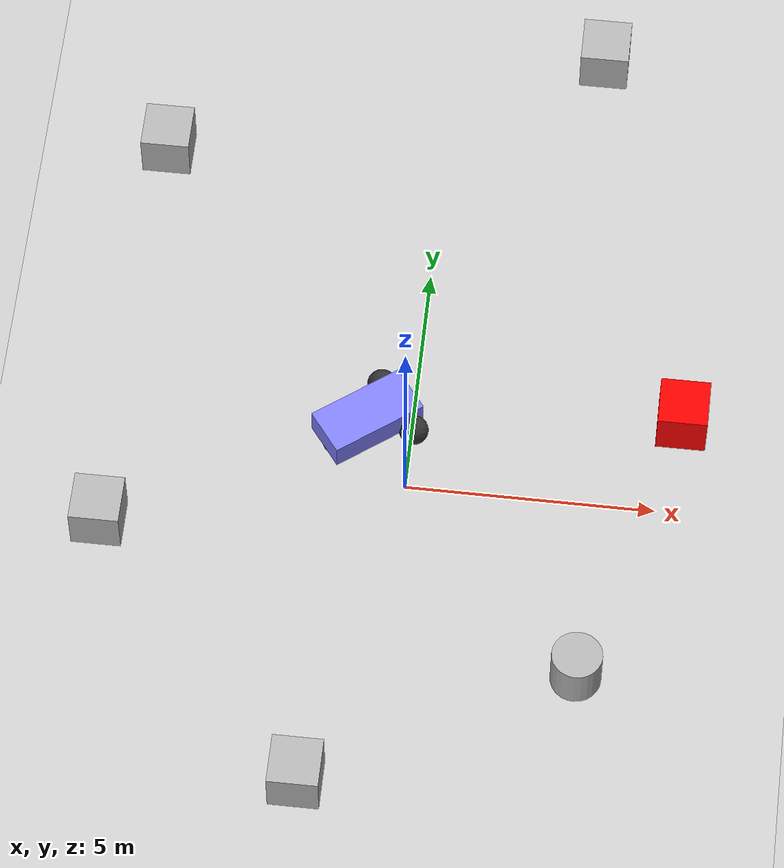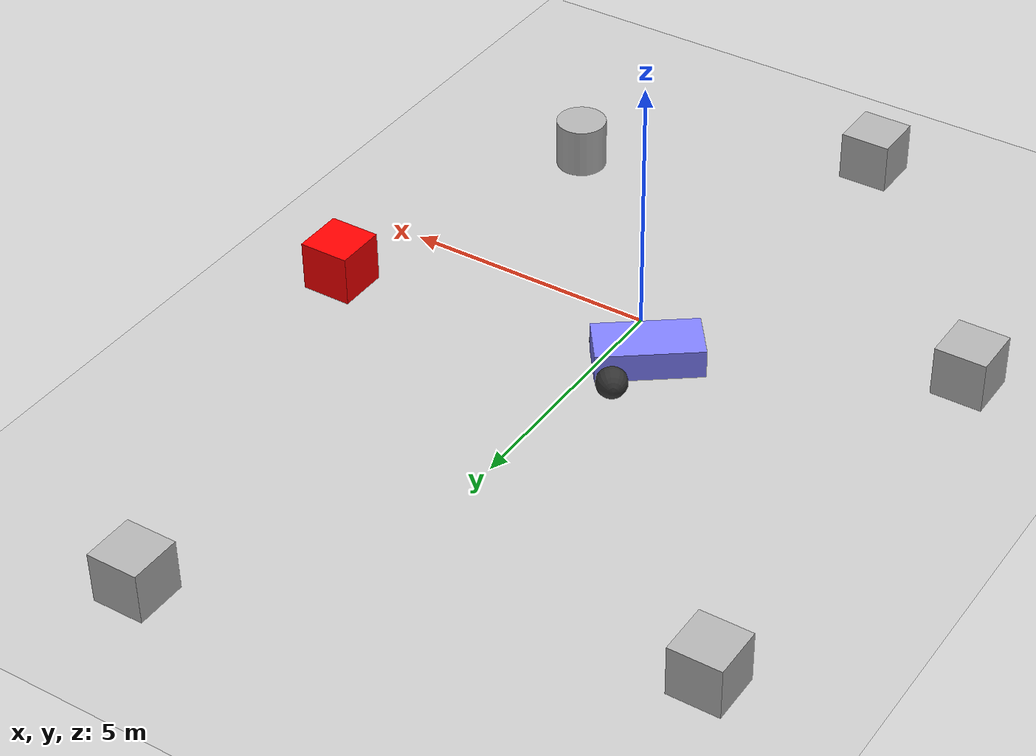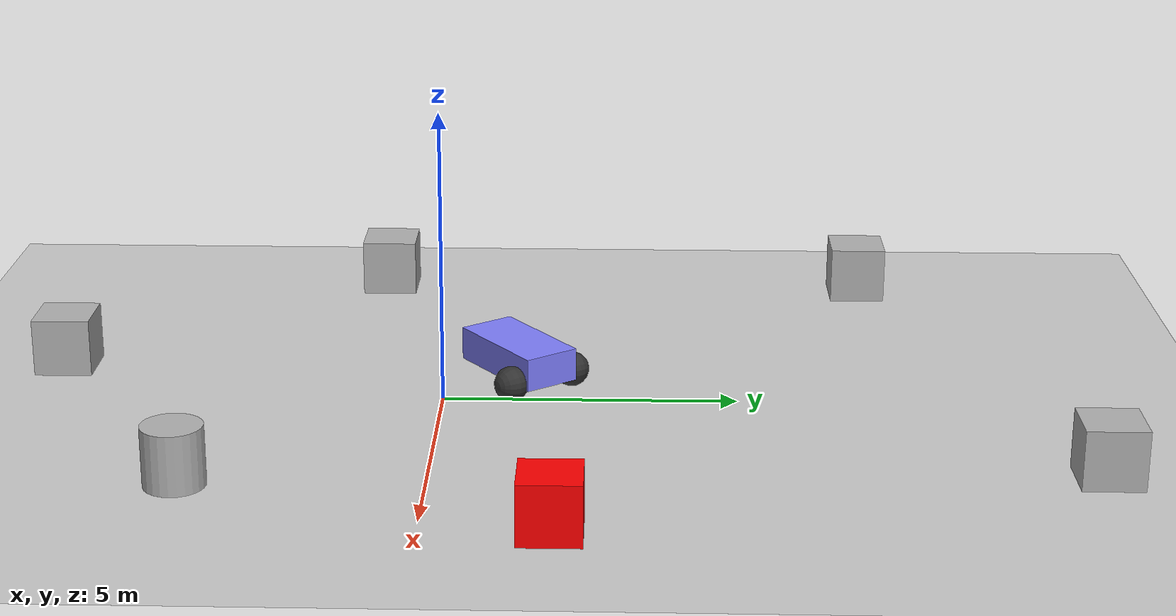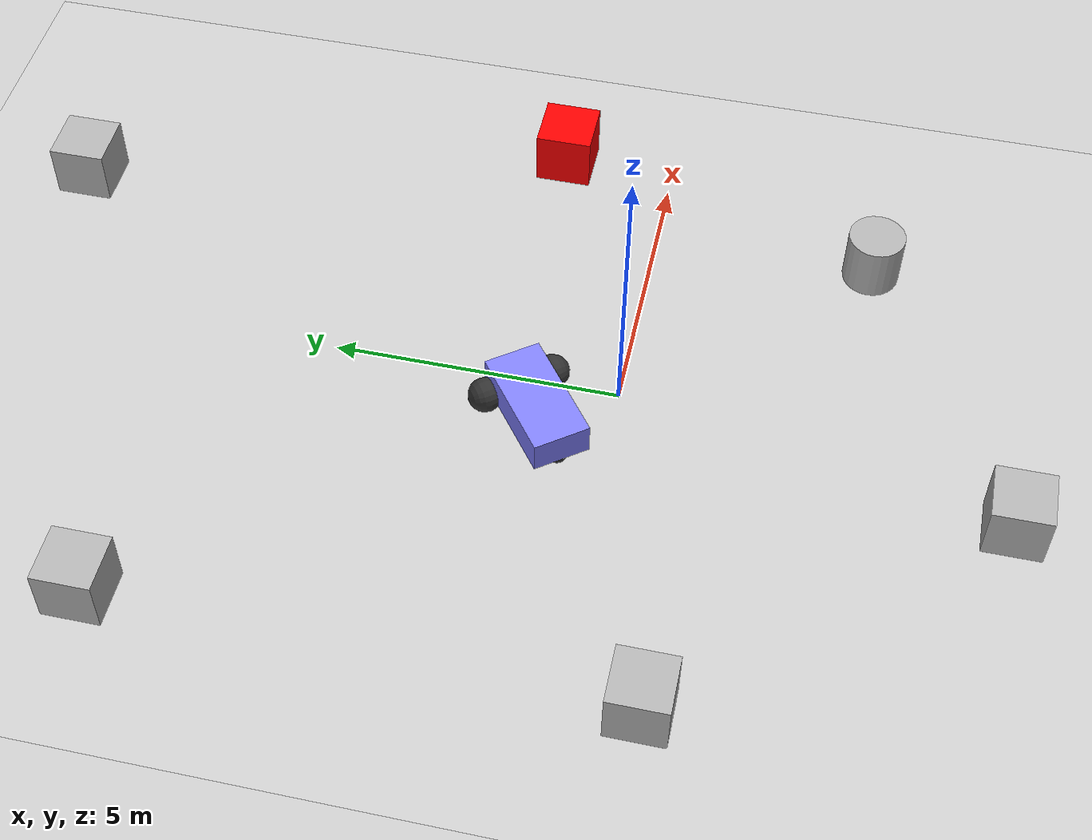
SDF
<?xml version="1.0" ?>
<sdf version='1.10'>
  <world name='gpu_lidar_sensor'>
    <physics name='1ms' type='ignored'>
      <max_step_size>0.001</max_step_size>
      <real_time_factor>1</real_time_factor>
      <real_time_update_rate>1000</real_time_update_rate>
    </physics>
    <plugin name='gz::sim::systems::Physics' filename='gz-sim-physics-system'/>
    <plugin name='gz::sim::systems::Sensors' filename='gz-sim-sensors-system'>
      <render_engine>ogre2</render_engine>
    </plugin>
    <plugin name='gz::sim::systems::SceneBroadcaster' filename='gz-sim-scene-broadcaster-system'/>
    <plugin name='gz::sim::systems::UserCommands' filename='gz-sim-user-commands-system'/>
    <plugin name='gz::sim::systems::TriggeredPublisher' filename='gz-sim-triggered-publisher-system'>
      <input type='gz.msgs.Int32' topic='/keyboard/keypress'>
        <match field='data'>88</match>
      </input>
      <output type='gz.msgs.Twist' topic='/cmd_vel'>linear: {x: 0.0}, angular: {z: 0.0}</output>
    </plugin>
    <plugin name='gz::sim::systems::TriggeredPublisher' filename='gz-sim-triggered-publisher-system'>
      <input type='gz.msgs.Int32' topic='/keyboard/keypress'>
        <match field='data'>16777234</match>
      </input>
      <output type='gz.msgs.Twist' topic='/cmd_vel'>linear: {x: 0.0}, angular: {z: 0.5}</output>
    </plugin>
    <plugin name='gz::sim::systems::TriggeredPublisher' filename='gz-sim-triggered-publisher-system'>
      <input type='gz.msgs.Int32' topic='/keyboard/keypress'>
        <match field='data'>16777235</match>
      </input>
      <output type='gz.msgs.Twist' topic='/cmd_vel'>linear: {x: 1}, angular: {z: 0.0}</output>
    </plugin>
    <plugin name='gz::sim::systems::TriggeredPublisher' filename='gz-sim-triggered-publisher-system'>
      <input type='gz.msgs.Int32' topic='/keyboard/keypress'>
        <match field='data'>16777236</match>
      </input>
      <output type='gz.msgs.Twist' topic='/cmd_vel'>linear: {x: 0.0}, angular: {z: -0.5}</output>
    </plugin>
    <plugin name='gz::sim::systems::TriggeredPublisher' filename='gz-sim-triggered-publisher-system'>
      <input type='gz.msgs.Int32' topic='/keyboard/keypress'>
        <match field='data'>16777237</match>
      </input>
      <output type='gz.msgs.Twist' topic='/cmd_vel'>linear: {x: -1}, angular: {z: 0.0}</output>
    </plugin>
    <gravity>0 0 -9.8000000000000007</gravity>
    <magnetic_field>5.5644999999999998e-06 2.2875799999999999e-05 -4.2388400000000002e-05</magnetic_field>
    <atmosphere type='adiabatic'/>
    <scene>
      <ambient>0.400000006 0.400000006 0.400000006 1</ambient>
      <background>0.699999988 0.699999988 0.699999988 1</background>
      <shadows>true</shadows>
    </scene>
    <model name='ground_plane'>
      <static>true</static>
      <link name='link'>
        <collision name='collision'>
          <geometry>
            <plane>
              <normal>0 0 1</normal>
              <size>1 1</size>
            </plane>
          </geometry>
          <surface>
            <friction>
              <ode/>
            </friction>
            <bounce/>
            <contact/>
          </surface>
        </collision>
        <visual name='visual'>
          <geometry>
            <plane>
              <normal>0 0 1</normal>
              <size>1 1</size>
            </plane>
          </geometry>
          <material>
            <ambient>0.800000012 0.800000012 0.800000012 1</ambient>
            <diffuse>0.800000012 0.800000012 0.800000012 1</diffuse>
            <specular>0.800000012 0.800000012 0.800000012 1</specular>
          </material>
        </visual>
        <pose>0 0 0 0 0 0</pose>
        <inertial>
          <pose>0 0 0 0 0 0</pose>
          <mass>1</mass>
          <inertia>
            <ixx>1</ixx>
            <ixy>0</ixy>
            <ixz>0</ixz>
            <iyy>1</iyy>
            <iyz>0</iyz>
            <izz>1</izz>
          </inertia>
        </inertial>
        <enable_wind>false</enable_wind>
      </link>
      <pose>0 0 0 0 0 0</pose>
      <self_collide>false</self_collide>
    </model>
    <model name='vehicle_blue'>
      <pose>-0.77184983539733709 1.3399398861786205 0.32499999238485333 -4.4728765509874015e-15 2.4935115197319461e-10 0.6437200589346791</pose>
      <link name='chassis'>
        <pose>-0.15142700000000001 0 0.17499999999999999 0 0 0</pose>
        <inertial>
          <mass>1.14395</mass>
          <inertia>
            <ixx>0.126164</ixx>
            <ixy>0</ixy>
            <ixz>0</ixz>
            <iyy>0.41651899999999997</iyy>
            <iyz>0</iyz>
            <izz>0.481014</izz>
          </inertia>
          <pose>0 0 0 0 0 0</pose>
        </inertial>
        <visual name='visual'>
          <geometry>
            <box>
              <size>2.0114200000000002 1 0.56872599999999995</size>
            </box>
          </geometry>
          <material>
            <ambient>0.5 0.5 1 1</ambient>
            <diffuse>0.5 0.5 1 1</diffuse>
            <specular>0 0 1 1</specular>
          </material>
        </visual>
        <collision name='collision'>
          <geometry>
            <box>
              <size>2.0114200000000002 1 0.56872599999999995</size>
            </box>
          </geometry>
          <surface>
            <friction>
              <ode/>
            </friction>
            <bounce/>
            <contact/>
          </surface>
        </collision>
        <enable_wind>false</enable_wind>
      </link>
      <link name='lidar_link'>
        <pose>0.050000000000000072 8.8817841970012523e-16 0.29999999999999988 5.169878828456423e-26 -1.2278462217584005e-25 -3.1739080932344823e-51</pose>
        <sensor name='gpu_lidar' type='gpu_lidar'>
          <pose>0 0 0 0 0 0</pose>
          <topic>lidar</topic>
          <update_rate>10</update_rate>
          <enable_metrics>false</enable_metrics>
          <lidar>
            <scan>
              <horizontal>
                <samples>640</samples>
                <resolution>1</resolution>
                <min_angle>-3.1400000000000001</min_angle>
                <max_angle>3.1400000000000001</max_angle>
              </horizontal>
              <vertical>
                <samples>16</samples>
                <min_angle>-0.261799</min_angle>
                <max_angle>0.261799</max_angle>
                <resolution>1</resolution>
              </vertical>
            </scan>
            <range>
              <min>0.080000000000000002</min>
              <max>10</max>
              <resolution>0.01</resolution>
            </range>
            <noise>
              <type>none</type>
              <mean>0</mean>
              <stddev>0</stddev>
            </noise>
            <visibility_mask>4294967295</visibility_mask>
          </lidar>
        </sensor>
        <inertial>
          <pose>0 0 0 0 0 0</pose>
          <mass>1</mass>
          <inertia>
            <ixx>1</ixx>
            <ixy>0</ixy>
            <ixz>0</ixz>
            <iyy>1</iyy>
            <iyz>0</iyz>
            <izz>1</izz>
          </inertia>
        </inertial>
        <enable_wind>false</enable_wind>
      </link>
      <joint name='lidar_joint' type='fixed'>
        <parent>chassis</parent>
        <child>lidar_link</child>
        <pose>0 0 0 0 0 0</pose>
      </joint>
      <link name='base_footprint'>
        <pose>-4.163336342344337e-16 2.2204460492503131e-16 -5.5511151231257827e-17 3.8774091213423172e-26 8.4010530962416873e-26 1.6287159952124317e-51</pose>
        <inertial>
          <pose>0 0 0 0 0 0</pose>
          <mass>1</mass>
          <inertia>
            <ixx>1</ixx>
            <ixy>0</ixy>
            <ixz>0</ixz>
            <iyy>1</iyy>
            <iyz>0</iyz>
            <izz>1</izz>
          </inertia>
        </inertial>
        <enable_wind>false</enable_wind>
      </link>
      <joint name='base_footprint_joint' type='fixed'>
        <parent>base_footprint</parent>
        <child>chassis</child>
        <pose>0 0 0 0 0 0</pose>
      </joint>
      <link name='left_wheel'>
        <pose>0.55428400004815626 0.6250290000105021 -0.025000000000020228 -1.5702712195450679 1.3863094489912935 0.00051619644829633215</pose>
        <inertial>
          <mass>2</mass>
          <inertia>
            <ixx>0.14583299999999999</ixx>
            <ixy>0</ixy>
            <ixz>0</ixz>
            <iyy>0.14583299999999999</iyy>
            <iyz>0</iyz>
            <izz>0.125</izz>
          </inertia>
          <pose>0 0 0 0 0 0</pose>
        </inertial>
        <visual name='visual'>
          <geometry>
            <sphere>
              <radius>0.29999999999999999</radius>
            </sphere>
          </geometry>
          <material>
            <ambient>0.200000003 0.200000003 0.200000003 1</ambient>
            <diffuse>0.200000003 0.200000003 0.200000003 1</diffuse>
            <specular>0.200000003 0.200000003 0.200000003 1</specular>
          </material>
        </visual>
        <collision name='collision'>
          <geometry>
            <sphere>
              <radius>0.29999999999999999</radius>
            </sphere>
          </geometry>
          <surface>
            <friction>
              <ode>
                <mu>1</mu>
                <mu2>1</mu2>
                <slip1>0.035000000000000003</slip1>
                <slip2>0</slip2>
                <fdir1>0 0 1</fdir1>
              </ode>
              <bullet>
                <friction>1</friction>
                <friction2>1</friction2>
                <rolling_friction>0.10000000000000001</rolling_friction>
              </bullet>
            </friction>
            <bounce/>
            <contact/>
          </surface>
        </collision>
        <enable_wind>false</enable_wind>
      </link>
      <link name='right_wheel'>
        <pose>0.55428300004815811 -0.62502899998949779 -0.025000000000020062 1.5706358434850947 -0.92700848071801945 -3.1414642945567595</pose>
        <inertial>
          <mass>2</mass>
          <inertia>
            <ixx>0.14583299999999999</ixx>
            <ixy>0</ixy>
            <ixz>0</ixz>
            <iyy>0.14583299999999999</iyy>
            <iyz>0</iyz>
            <izz>0.125</izz>
          </inertia>
          <pose>0 0 0 0 0 0</pose>
        </inertial>
        <visual name='visual'>
          <geometry>
            <sphere>
              <radius>0.29999999999999999</radius>
            </sphere>
          </geometry>
          <material>
            <ambient>0.200000003 0.200000003 0.200000003 1</ambient>
            <diffuse>0.200000003 0.200000003 0.200000003 1</diffuse>
            <specular>0.200000003 0.200000003 0.200000003 1</specular>
          </material>
        </visual>
        <collision name='collision'>
          <geometry>
            <sphere>
              <radius>0.29999999999999999</radius>
            </sphere>
          </geometry>
          <surface>
            <friction>
              <ode>
                <mu>1</mu>
                <mu2>1</mu2>
                <slip1>0.035000000000000003</slip1>
                <slip2>0</slip2>
                <fdir1>0 0 1</fdir1>
              </ode>
              <bullet>
                <friction>1</friction>
                <friction2>1</friction2>
                <rolling_friction>0.10000000000000001</rolling_friction>
              </bullet>
            </friction>
            <bounce/>
            <contact/>
          </surface>
        </collision>
        <enable_wind>false</enable_wind>
      </link>
      <link name='caster'>
        <pose>-0.95713699995184798 1.0500711411509656e-11 -0.1249999999999423 0.70899221633459164 0.28263916385468862 1.2093188155541783</pose>
        <inertial>
          <mass>1</mass>
          <inertia>
            <ixx>0.10000000000000001</ixx>
            <ixy>0</ixy>
            <ixz>0</ixz>
            <iyy>0.10000000000000001</iyy>
            <iyz>0</iyz>
            <izz>0.10000000000000001</izz>
          </inertia>
          <pose>0 0 0 0 0 0</pose>
        </inertial>
        <visual name='visual'>
          <geometry>
            <sphere>
              <radius>0.20000000000000001</radius>
            </sphere>
          </geometry>
          <material>
            <ambient>0.200000003 0.200000003 0.200000003 1</ambient>
            <diffuse>0.200000003 0.200000003 0.200000003 1</diffuse>
            <specular>0.200000003 0.200000003 0.200000003 1</specular>
          </material>
        </visual>
        <collision name='collision'>
          <geometry>
            <sphere>
              <radius>0.20000000000000001</radius>
            </sphere>
          </geometry>
          <surface>
            <friction>
              <ode/>
            </friction>
            <bounce/>
            <contact/>
          </surface>
        </collision>
        <enable_wind>false</enable_wind>
      </link>
      <joint name='left_wheel_joint' type='revolute'>
        <parent>chassis</parent>
        <child>left_wheel</child>
        <axis>
          <xyz>0 0 1</xyz>
          <limit>
            <lower>-1.7976900000000001e+308</lower>
            <upper>1.7976900000000001e+308</upper>
            <effort>inf</effort>
            <velocity>inf</velocity>
            <stiffness>100000000</stiffness>
            <dissipation>1</dissipation>
          </limit>
          <dynamics>
            <spring_reference>0</spring_reference>
            <spring_stiffness>0</spring_stiffness>
            <damping>0</damping>
            <friction>0</friction>
          </dynamics>
        </axis>
        <pose>1.1102230246251565e-16 2.7755575615628914e-17 1.1102230246251565e-16 0 0 -8.3266726846886741e-17</pose>
      </joint>
      <joint name='right_wheel_joint' type='revolute'>
        <parent>chassis</parent>
        <child>right_wheel</child>
        <axis>
          <xyz>0 0 1</xyz>
          <limit>
            <lower>-1.7976900000000001e+308</lower>
            <upper>1.7976900000000001e+308</upper>
            <effort>inf</effort>
            <velocity>inf</velocity>
            <stiffness>100000000</stiffness>
            <dissipation>1</dissipation>
          </limit>
          <dynamics>
            <spring_reference>0</spring_reference>
            <spring_stiffness>0</spring_stiffness>
            <damping>0</damping>
            <friction>0</friction>
          </dynamics>
        </axis>
        <pose>-1.1102230246251565e-16 5.5511151231257827e-17 -3.3306690738754696e-16 0 0 -1.1102230246251568e-16</pose>
      </joint>
      <joint name='caster_wheel' type='ball'>
        <parent>chassis</parent>
        <child>caster</child>
        <pose>-1.1102230246251565e-16 0 -1.1102230246251565e-16 0 0 0</pose>
      </joint>
      <plugin name='gz::sim::systems::DiffDrive' filename='gz-sim-diff-drive-system'>
        <left_joint>left_wheel_joint</left_joint>
        <right_joint>right_wheel_joint</right_joint>
        <wheel_separation>1.25</wheel_separation>
        <wheel_radius>0.3</wheel_radius>
        <max_linear_acceleration>1</max_linear_acceleration>
        <min_linear_acceleration>-1</min_linear_acceleration>
        <max_angular_acceleration>2</max_angular_acceleration>
        <min_angular_acceleration>-2</min_angular_acceleration>
        <max_linear_velocity>1</max_linear_velocity>
        <min_linear_velocity>-1</min_linear_velocity>
        <max_angular_velocity>1</max_angular_velocity>
        <min_angular_velocity>-1</min_angular_velocity>
        <topic>cmd_vel</topic>
        <tf_topic>tf_foo</tf_topic>
        <odom_topic>odom</odom_topic>
        <frame_id>odom</frame_id>
        <child_frame_id>vehicle_blue</child_frame_id>
        <odom_publisher_frequency>30</odom_publisher_frequency>
      </plugin>
      <plugin name='ignition::gazebo::systems::JointStatePublisher' filename='ignition-gazebo-joint-state-publisher-system'/>
      <plugin name='ignition::gazebo::systems::PosePublisher' filename='ignition-gazebo-pose-publisher-system'>
        <publish_link_pose>true</publish_link_pose>
        <use_pose_vector_msg>true</use_pose_vector_msg>
        <publish_sensor_pose>true</publish_sensor_pose>
      </plugin>
      <static>false</static>
      <self_collide>false</self_collide>
    </model>
    <model name='box'>
      <pose>5.3964481353759766 2 0.4999991699156669 6.7620267452500662e-18 -6.7812738346563619e-18 -7.0404034346060617e-19</pose>
      <link name='box_link'>
        <inertial>
          <inertia>
            <ixx>1</ixx>
            <ixy>0</ixy>
            <ixz>0</ixz>
            <iyy>1</iyy>
            <iyz>0</iyz>
            <izz>1</izz>
          </inertia>
          <mass>1</mass>
          <pose>0 0 0 0 0 0</pose>
        </inertial>
        <collision name='box_collision'>
          <geometry>
            <box>
              <size>1 1 1</size>
            </box>
          </geometry>
          <surface>
            <friction>
              <ode/>
            </friction>
            <bounce/>
            <contact/>
          </surface>
        </collision>
        <visual name='box_visual'>
          <geometry>
            <box>
              <size>1 1 1</size>
            </box>
          </geometry>
          <material>
            <ambient>1 0 0 1</ambient>
            <diffuse>1 0 0 1</diffuse>
            <specular>1 0 0 1</specular>
          </material>
        </visual>
        <pose>0 0 0 0 0 0</pose>
        <enable_wind>false</enable_wind>
      </link>
      <static>false</static>
      <self_collide>false</self_collide>
    </model>
    <model name='cylinder'>
      <pose>3.7591266286598506 -3.8982623502909348 0.49999916990436061 7.523108720982276e-17 -6.9614014468967318e-18 -2.8532095453170832e-17</pose>
      <link name='cylinder_link'>
        <inertial>
          <inertia>
            <ixx>0.14580000000000001</ixx>
            <ixy>0</ixy>
            <ixz>0</ixz>
            <iyy>0.14580000000000001</iyy>
            <iyz>0</iyz>
            <izz>0.125</izz>
          </inertia>
          <mass>1</mass>
          <pose>0 0 0 0 0 0</pose>
        </inertial>
        <collision name='cylinder_collision'>
          <geometry>
            <cylinder>
              <radius>0.5</radius>
              <length>1</length>
            </cylinder>
          </geometry>
          <surface>
            <friction>
              <ode/>
            </friction>
            <bounce/>
            <contact/>
          </surface>
        </collision>
        <visual name='cylinder_visual'>
          <geometry>
            <cylinder>
              <radius>0.5</radius>
              <length>1</length>
            </cylinder>
          </geometry>
          <material>
            <ambient>0.300000012 0.300000012 0.300000012 1</ambient>
            <diffuse>0.699999988 0.699999988 0.699999988 1</diffuse>
            <specular>1 1 1 1</specular>
          </material>
        </visual>
        <pose>0 0 0 0 0 0</pose>
        <enable_wind>false</enable_wind>
      </link>
      <static>false</static>
      <self_collide>false</self_collide>
    </model>
    <model name='box_0'>
      <pose>-5.9654865264892578 -1.444100022315979 0.4999991635466341 -1.4533271087306346e-18 -6.7670596386774058e-18 -1.2272757283809392e-20</pose>
      <link name='box_link'>
        <inertial>
          <inertia>
            <ixx>0.16666</ixx>
            <ixy>0</ixy>
            <ixz>0</ixz>
            <iyy>0.16666</iyy>
            <iyz>0</iyz>
            <izz>0.16666</izz>
          </inertia>
          <mass>1</mass>
          <pose>0 0 0 0 0 0</pose>
        </inertial>
        <collision name='box_collision'>
          <geometry>
            <box>
              <size>1 1 1</size>
            </box>
          </geometry>
          <surface>
            <friction>
              <ode/>
            </friction>
            <bounce/>
            <contact/>
          </surface>
        </collision>
        <visual name='box_visual'>
          <geometry>
            <box>
              <size>1 1 1</size>
            </box>
          </geometry>
          <material>
            <ambient>0.300000012 0.300000012 0.300000012 1</ambient>
            <diffuse>0.699999988 0.699999988 0.699999988 1</diffuse>
            <specular>1 1 1 1</specular>
          </material>
        </visual>
        <pose>0 0 0 0 0 0</pose>
        <enable_wind>false</enable_wind>
      </link>
      <static>false</static>
      <self_collide>false</self_collide>
    </model>
    <model name='box_1'>
      <pose>3.1083199977874756 10.658835411071777 0.49999899675572512 -3.4296899428827448e-18 -6.2728533004239267e-18 6.6611752990215744e-18</pose>
      <link name='box_link'>
        <inertial>
          <inertia>
            <ixx>0.16666</ixx>
            <ixy>0</ixy>
            <ixz>0</ixz>
            <iyy>0.16666</iyy>
            <iyz>0</iyz>
            <izz>0.16666</izz>
          </inertia>
          <mass>1</mass>
          <pose>0 0 0 0 0 0</pose>
        </inertial>
        <collision name='box_collision'>
          <geometry>
            <box>
              <size>1 1 1</size>
            </box>
          </geometry>
          <surface>
            <friction>
              <ode/>
            </friction>
            <bounce/>
            <contact/>
          </surface>
        </collision>
        <visual name='box_visual'>
          <geometry>
            <box>
              <size>1 1 1</size>
            </box>
          </geometry>
          <material>
            <ambient>0.300000012 0.300000012 0.300000012 1</ambient>
            <diffuse>0.699999988 0.699999988 0.699999988 1</diffuse>
            <specular>1 1 1 1</specular>
          </material>
        </visual>
        <pose>0 0 0 0 0 0</pose>
        <enable_wind>false</enable_wind>
      </link>
      <static>false</static>
      <self_collide>false</self_collide>
    </model>
    <model name='box_2'>
      <pose>-5.7757538736578979 7.5092163660920495 0.4999991635466341 1.5613261073570402e-18 -6.6664034372779807e-18 6.0157056605022976e-18</pose>
      <link name='box_link'>
        <inertial>
          <inertia>
            <ixx>0.16666</ixx>
            <ixy>0</ixy>
            <ixz>0</ixz>
            <iyy>0.16666</iyy>
            <iyz>0</iyz>
            <izz>0.16666</izz>
          </inertia>
          <mass>1</mass>
          <pose>0 0 0 0 0 0</pose>
        </inertial>
        <collision name='box_collision'>
          <geometry>
            <box>
              <size>1 1 1</size>
            </box>
          </geometry>
          <surface>
            <friction>
              <ode/>
            </friction>
            <bounce/>
            <contact/>
          </surface>
        </collision>
        <visual name='box_visual'>
          <geometry>
            <box>
              <size>1 1 1</size>
            </box>
          </geometry>
          <material>
            <ambient>0.300000012 0.300000012 0.300000012 1</ambient>
            <diffuse>0.699999988 0.699999988 0.699999988 1</diffuse>
            <specular>1 1 1 1</specular>
          </material>
        </visual>
        <pose>0 0 0 0 0 0</pose>
        <enable_wind>false</enable_wind>
      </link>
      <static>false</static>
      <self_collide>false</self_collide>
    </model>
    <model name='box_3'>
      <pose>-1.3822708851881016 -6.7290648142010152 0.4999991635466341 -2.1671023449715497e-18 -6.6469341897324431e-18 4.4633703598273799e-18</pose>
      <link name='box_link'>
        <inertial>
          <inertia>
            <ixx>0.16666</ixx>
            <ixy>0</ixy>
            <ixz>0</ixz>
            <iyy>0.16666</iyy>
            <iyz>0</iyz>
            <izz>0.16666</izz>
          </inertia>
          <mass>1</mass>
          <pose>0 0 0 0 0 0</pose>
        </inertial>
        <collision name='box_collision'>
          <geometry>
            <box>
              <size>1 1 1</size>
            </box>
          </geometry>
          <surface>
            <friction>
              <ode/>
            </friction>
            <bounce/>
            <contact/>
          </surface>
        </collision>
        <visual name='box_visual'>
          <geometry>
            <box>
              <size>1 1 1</size>
            </box>
          </geometry>
          <material>
            <ambient>0.300000012 0.300000012 0.300000012 1</ambient>
            <diffuse>0.699999988 0.699999988 0.699999988 1</diffuse>
            <specular>1 1 1 1</specular>
          </material>
        </visual>
        <pose>0 0 0 0 0 0</pose>
        <enable_wind>false</enable_wind>
      </link>
      <static>false</static>
      <self_collide>false</self_collide>
    </model>
    <light name='sun' type='directional'>
      <pose>0 0 10 0 0 0</pose>
      <cast_shadows>true</cast_shadows>
      <intensity>1</intensity>
      <direction>-0.5 0.10000000000000001 -0.90000000000000002</direction>
      <diffuse>0.800000012 0.800000012 0.800000012 1</diffuse>
      <specular>0.200000003 0.200000003 0.200000003 1</specular>
      <attenuation>
        <range>1000</range>
        <linear>0.01</linear>
        <constant>0.90000000000000002</constant>
        <quadratic>0.001</quadratic>
      </attenuation>
      <spot>
        <inner_angle>0</inner_angle>
        <outer_angle>0</outer_angle>
        <falloff>0</falloff>
      </spot>
    </light>
  </world>
</sdf>
